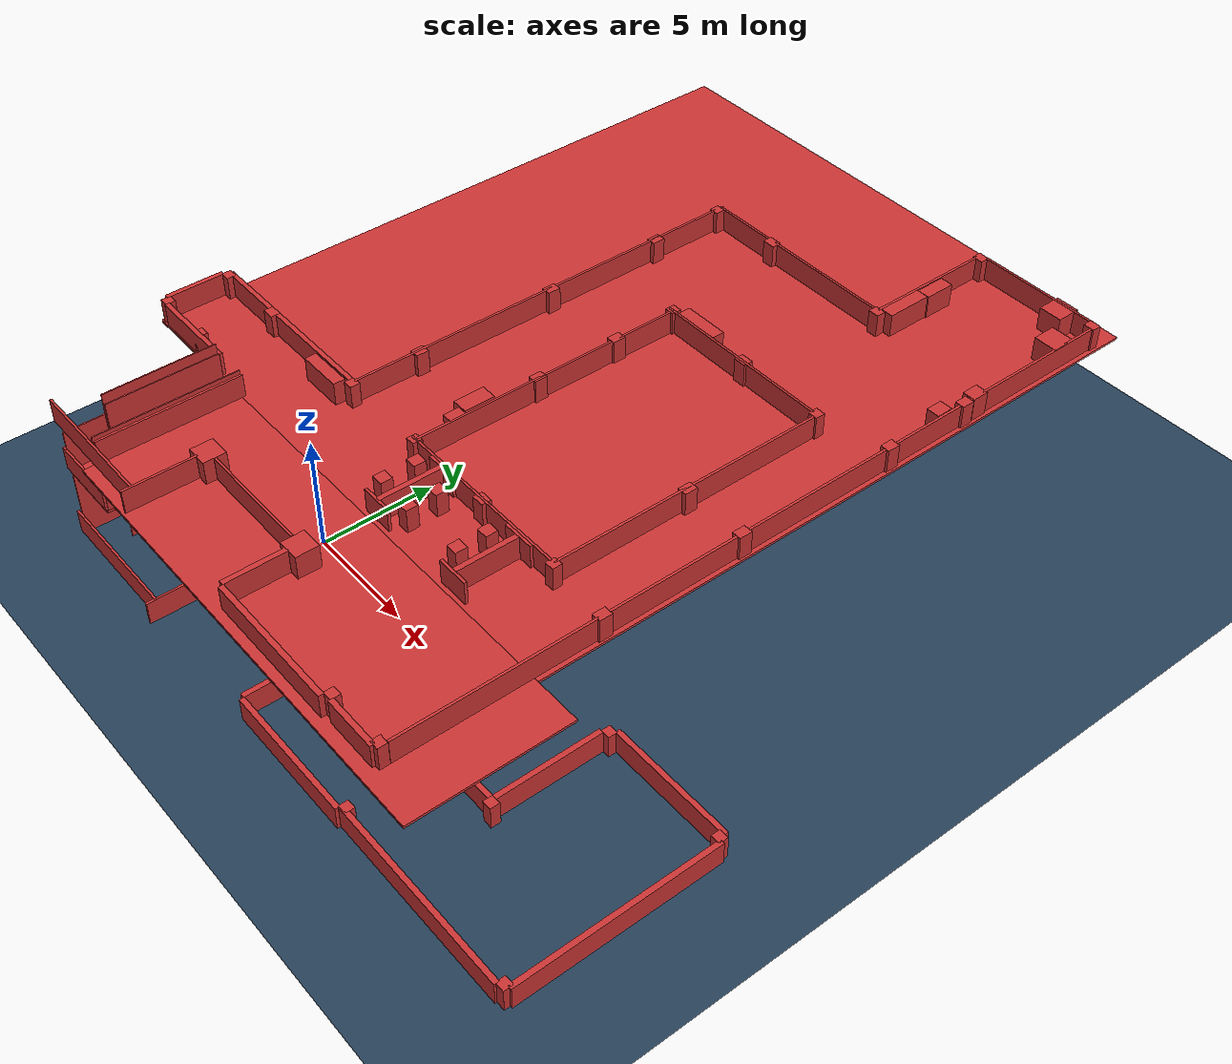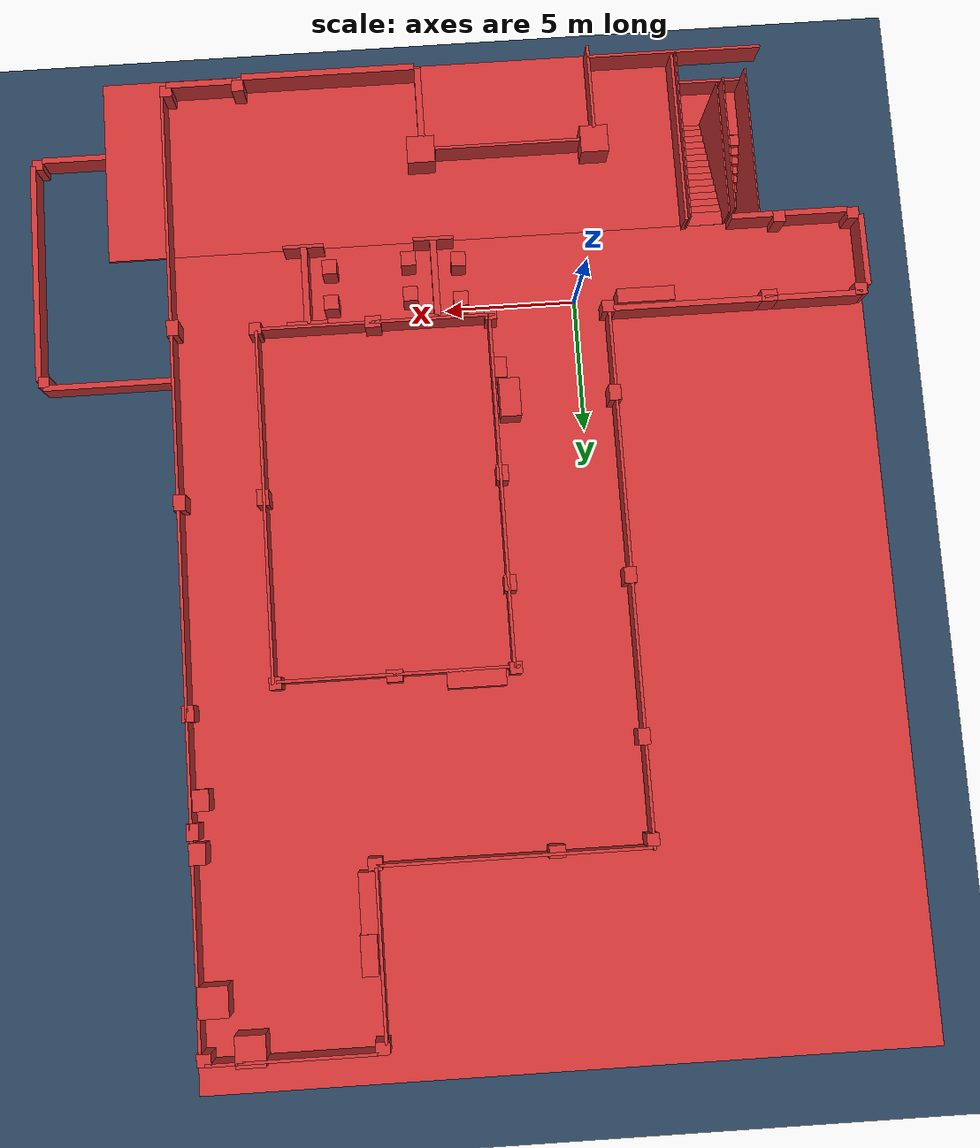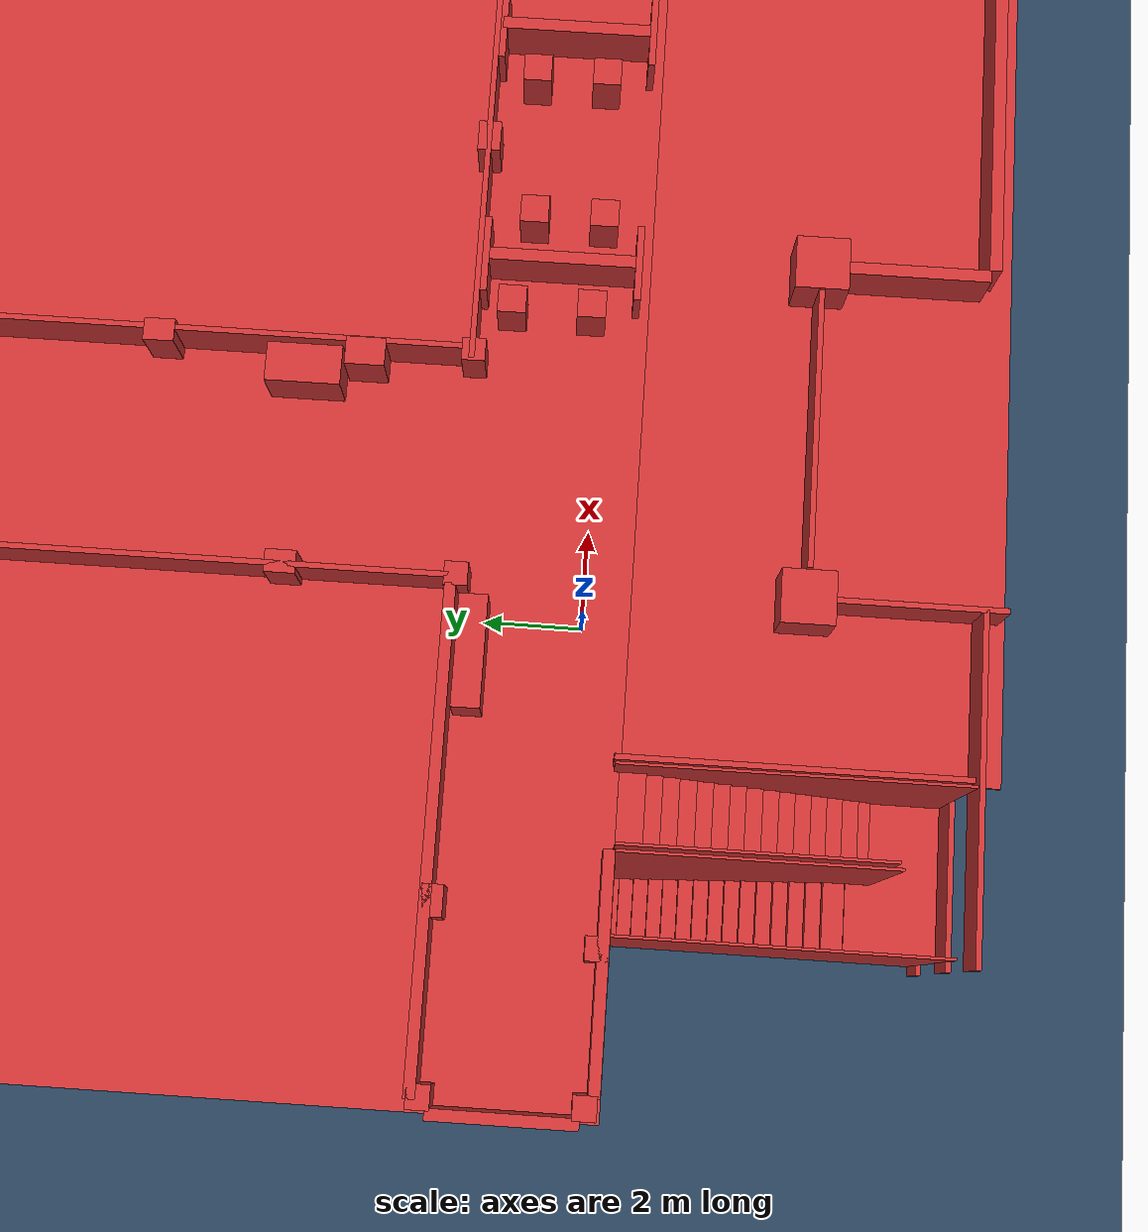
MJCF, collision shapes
<mujoco model="XXG scene">
  <include file="xxg.xml" />

  <statistic center="0 0 0.1" extent="0.8" />

  <visual>
    <headlight diffuse="0.6 0.6 0.6" ambient="0.3 0.3 0.3" specular="0 0 0" />
    <rgba haze="0.15 0.25 0.35 1" />
    <global azimuth="-130" elevation="-20" />
    <map znear="0.01" zfar="100"/>
  </visual>

  <asset>
    <texture type="skybox" builtin="gradient" rgb1="0.3 0.5 0.7" rgb2="0 0 0" width="512" height="3072" />
    <texture type="2d" name="groundplane" builtin="checker" mark="edge" rgb1="0.2 0.3 0.4" rgb2="0.1 0.2 0.3" markrgb="0.8 0.8 0.8" width="300" height="300" />
    <material name="groundplane" texture="groundplane" texuniform="true" texrepeat="5 5" reflectance="0.2" />
  <hfield name="perlin_hfield" size="1.0 0.75 0.2 0.2" file="../height_field.png" /><hfield name="image_hfield" size="1.0 1.0 0.02 0.1" file="../unitree_hfield.png" /></asset>

  <worldbody>
    <light pos="0 0 1.5" dir="0 0 -1" directional="true" />
    <geom name="floor" pos="0 0.0 0.001" size="0 0 0.05" type="plane" material="groundplane" />
<geom name="phs_Cube" type="box" size="0.475 0.475 0.5" pos="-0.4 -3.8 0.5" quat="1.0 0.0 0.0 0.0" rgba="0.8 0.2 0.2 1" solref="0.02 1" solimp="0.9 0.95 0.001"/>
<geom name="phs_Cube2" type="box" size="0.475 0.475 0.5" pos="5.6 -3.8 0.5" quat="1.0 0.0 0.0 0.0" rgba="0.8 0.2 0.2 1" solref="0.02 1" solimp="0.9 0.95 0.001"/>
<geom name="phs_Cube3" type="box" size="2.5 0.05 0.5" pos="2.6 -3.8 0.5" quat="1.0 0.0 0.0 0.0" rgba="0.8 0.2 0.2 1" solref="0.02 1" solimp="0.9 0.95 0.001"/>
<geom name="phs_Cube4" type="box" size="0.05 1.5 0.5" pos="-0.43 -5.7 0.5" quat="1.0 0.0 0.0 0.0" rgba="0.8 0.2 0.2 1" solref="0.02 1" solimp="0.9 0.95 0.001"/>
<geom name="phs_Cube5" type="box" size="0.05 3.0 0.5" pos="-3.43 -6.8 0.5" quat="0.707107 0.0 0.0 0.707107" rgba="0.8 0.2 0.2 1" solref="0.02 1" solimp="0.9 0.95 0.001"/>
<geom name="phs_Cube6" type="box" size="0.025 3.0 2.5" pos="-6.22 -3.74 2.5" quat="1.0 0.0 0.0 -0.0" rgba="0.8 0.2 0.2 1" solref="0.02 1" solimp="0.9 0.95 0.001"/>
<geom name="phs_Cube7" type="box" size="0.18 0.18 0.5" pos="-6.5 -0.57 0.5" quat="1.0 0.0 0.0 0.0" rgba="0.8 0.2 0.2 1" solref="0.02 1" solimp="0.9 0.95 0.001"/>
<geom name="phs_Cube8" type="box" size="0.2 0.2 0.5" pos="-8.98 -0.39 0.5" quat="1.0 0.0 0.0 0.0" rgba="0.8 0.2 0.2 1" solref="0.02 1" solimp="0.9 0.95 0.001"/>
<geom name="phs_Cube9" type="box" size="1.05 0.05 0.5" pos="-7.7 -0.57 0.5" quat="1.0 0.0 0.0 0.0" rgba="0.8 0.2 0.2 1" solref="0.02 1" solimp="0.9 0.95 0.001"/>
<geom name="phs_Cube10" type="box" size="2.5 0.05 0.5" pos="-9.2 2.29 0.5" quat="0.707107 0.0 0.0 -0.707107" rgba="0.8 0.2 0.2 1" solref="0.02 1" solimp="0.9 0.95 0.001"/>
<geom name="phs_Cube11" type="box" size="0.2 0.2 0.5" pos="-9.07 4.98 0.5" quat="1.0 0.0 0.0 0.0" rgba="0.8 0.2 0.2 1" solref="0.02 1" solimp="0.9 0.95 0.001"/>
<geom name="phs_Cube12" type="box" size="0.27 0.2 0.5" pos="-6.89 5.18 0.5" quat="1.0 0.0 0.0 0.0" rgba="0.8 0.2 0.2 1" solref="0.02 1" solimp="0.9 0.95 0.001"/>
<geom name="phs_Cube13" type="box" size="1.75 0.11 0.5" pos="-7.35 5.3 0.5" quat="1.0 0.0 0.0 0.0" rgba="0.8 0.2 0.2 1" solref="0.02 1" solimp="0.9 0.95 0.001"/>
<geom name="phs_Cube14" type="box" size="1.75 0.11 0.5" pos="-2.45 5.3 0.5" quat="1.0 0.0 0.0 0.0" rgba="0.8 0.2 0.2 1" solref="0.02 1" solimp="0.9 0.95 0.001"/>
<geom name="phs_Cube15" type="box" size="0.27 0.2 0.5" pos="-2.9 5.18 0.5" quat="1.0 0.0 0.0 0.0" rgba="0.8 0.2 0.2 1" solref="0.02 1" solimp="0.9 0.95 0.001"/>
<geom name="phs_Cube16" type="box" size="0.2 0.2 0.5" pos="-0.51 4.98 0.5" quat="1.0 0.0 0.0 0.0" rgba="0.8 0.2 0.2 1" solref="0.02 1" solimp="0.9 0.95 0.001"/>
<geom name="phs_Cube17" type="box" size="1.25 0.11 0.5" pos="-0.3 3.65 0.5" quat="0.707107 0.0 0.0 -0.707107" rgba="0.8 0.2 0.2 1" solref="0.02 1" solimp="0.9 0.95 0.001"/>
<geom name="phs_Cube18" type="box" size="0.205 0.2 0.5" pos="-0.29 2.18 0.5" quat="1.0 0.0 0.0 0.0" rgba="0.8 0.2 0.2 1" solref="0.02 1" solimp="0.9 0.95 0.001"/>
<geom name="phs_Cube19" type="box" size="4.75 0.11 0.5" pos="4.66 2.29 0.5" quat="1.0 0.0 0.0 0.0" rgba="0.8 0.2 0.2 1" solref="0.02 1" solimp="0.9 0.95 0.001"/>
<geom name="phs_Cube20" type="box" size="0.27 0.2 0.5" pos="4.6 2.29 0.5" quat="1.0 0.0 0.0 0.0" rgba="0.8 0.2 0.2 1" solref="0.02 1" solimp="0.9 0.95 0.001"/>
<geom name="phs_Cube21" type="box" size="0.75 0.11 0.5" pos="-4.9 5.3 0.5" quat="1.0 0.0 0.0 0.0" rgba="0.8 0.2 0.2 1" solref="0.02 1" solimp="0.9 0.95 0.001"/>
<geom name="phs_Cube22" type="box" size="2.5 0.11 0.5" pos="9.69 -0.16 0.5" quat="0.707107 0.0 0.0 -0.707107" rgba="0.8 0.2 0.2 1" solref="0.02 1" solimp="0.9 0.95 0.001"/>
<geom name="phs_Cube23" type="box" size="0.205 0.2 0.5" pos="9.61 2.08 0.5" quat="1.0 0.0 0.0 0.0" rgba="0.8 0.2 0.2 1" solref="0.02 1" solimp="0.9 0.95 0.001"/>
<geom name="phs_Cube24" type="box" size="0.205 0.2 0.5" pos="9.71 -2.81 0.5" quat="1.0 0.0 0.0 0.0" rgba="0.8 0.2 0.2 1" solref="0.02 1" solimp="0.9 0.95 0.001"/>
<geom name="phs_Cube25" type="box" size="0.27 0.2 0.5" pos="12.39 -2.81 0.5" quat="1.0 0.0 0.0 0.0" rgba="0.8 0.2 0.2 1" solref="0.02 1" solimp="0.9 0.95 0.001"/>
<geom name="phs_Cube26" type="box" size="0.205 0.2 0.5" pos="14.6 -2.81 0.5" quat="1.0 0.0 0.0 0.0" rgba="0.8 0.2 0.2 1" solref="0.02 1" solimp="0.9 0.95 0.001"/>
<geom name="phs_Cube27" type="box" size="0.205 0.2 0.5" pos="14.7 2.06 0.5" quat="1.0 0.0 0.0 0.0" rgba="0.8 0.2 0.2 1" solref="0.02 1" solimp="0.9 0.95 0.001"/>
<geom name="phs_Cube28" type="box" size="0.205 0.2 0.5" pos="20.3 2.06 0.5" quat="1.0 0.0 0.0 0.0" rgba="0.8 0.2 0.2 1" solref="0.02 1" solimp="0.9 0.95 0.001"/>
<geom name="phs_Cube29" type="box" size="0.205 0.2 0.5" pos="20.3 -6.53 0.5" quat="1.0 0.0 0.0 0.0" rgba="0.8 0.2 0.2 1" solref="0.02 1" solimp="0.9 0.95 0.001"/>
<geom name="phs_Cube30" type="box" size="0.205 0.2 0.5" pos="11.8 -6.58 0.5" quat="1.0 0.0 0.0 0.0" rgba="0.8 0.2 0.2 1" solref="0.02 1" solimp="0.9 0.95 0.001"/>
<geom name="phs_Cube31" type="box" size="2.25 0.11 0.5" pos="12.15 -2.71 0.5" quat="1.0 0.0 0.0 0.0" rgba="0.8 0.2 0.2 1" solref="0.02 1" solimp="0.9 0.95 0.001"/>
<geom name="phs_Cube32" type="box" size="2.25 0.11 0.5" pos="14.5 -0.37 0.5" quat="0.707107 0.0 0.0 0.707107" rgba="0.8 0.2 0.2 1" solref="0.02 1" solimp="0.9 0.95 0.001"/>
<geom name="phs_Cube33" type="box" size="2.75 0.11 0.5" pos="17.6 2.3 0.5" quat="1.0 0.0 0.0 -0.0" rgba="0.8 0.2 0.2 1" solref="0.02 1" solimp="0.9 0.95 0.001"/>
<geom name="phs_Cube34" type="box" size="4.25 0.11 0.5" pos="20.49 -2.25 0.5" quat="0.707107 0.0 0.0 -0.707107" rgba="0.8 0.2 0.2 1" solref="0.02 1" solimp="0.9 0.95 0.001"/>
<geom name="phs_Cube35" type="box" size="4.25 0.11 0.5" pos="15.89 -6.7 0.5" quat="0.0 0.0 0.0 -1.0" rgba="0.8 0.2 0.2 1" solref="0.02 1" solimp="0.9 0.95 0.001"/>
<geom name="phs_Cube36" type="box" size="3.0 0.11 0.5" pos="8.65 -6.83 0.5" quat="0.0 0.0 0.0 -1.0" rgba="0.8 0.2 0.2 1" solref="0.02 1" solimp="0.9 0.95 0.001"/>
<geom name="phs_Cube37" type="box" size="1.25 0.11 0.5" pos="5.54 -5.51 0.5" quat="0.707107 0.0 0.0 0.707107" rgba="0.8 0.2 0.2 1" solref="0.02 1" solimp="0.9 0.95 0.001"/>
<geom name="phs_Cube38" type="box" size="0.025 2.35 3.5" pos="-4.92 -3.13 3.5" quat="1.0 0.0 0.0 0.0" rgba="0.8 0.2 0.2 1" solref="0.02 1" solimp="0.9 0.95 0.001"/>
<geom name="phs_Cube39" type="box" size="0.025 2.35 1.75" pos="-4.78 -3.13 4.89" quat="1.0 0.0 0.0 0.0" rgba="0.8 0.2 0.2 1" solref="0.02 1" solimp="0.9 0.95 0.001"/>
<geom name="phs_Cube40" type="box" size="0.025 3.0 1.75" pos="-3.45 -3.7 4.89" quat="1.0 0.0 0.0 0.0" rgba="0.8 0.2 0.2 1" solref="0.02 1" solimp="0.9 0.95 0.001"/>
<geom name="phs_Cube41" type="box" size="0.05 1.5 0.5" pos="-4.93 -6.75 3.68" quat="0.707107 0.0 0.0 0.707107" rgba="0.8 0.2 0.2 1" solref="0.02 1" solimp="0.9 0.95 0.001"/>
<geom name="phs_Cube42" type="box" size="0.475 0.475 0.5" pos="-0.4 -3.8 6.0" quat="1.0 0.0 0.0 0.0" rgba="0.8 0.2 0.2 1" solref="0.02 1" solimp="0.9 0.95 0.001"/>
<geom name="phs_Cube43" type="box" size="0.475 0.475 0.5" pos="5.6 -3.8 6.0" quat="1.0 0.0 0.0 0.0" rgba="0.8 0.2 0.2 1" solref="0.02 1" solimp="0.9 0.95 0.001"/>
<geom name="phs_Cube44" type="box" size="2.5 0.05 0.5" pos="2.6 -3.8 6.0" quat="1.0 0.0 0.0 0.0" rgba="0.8 0.2 0.2 1" solref="0.02 1" solimp="0.9 0.95 0.001"/>
<geom name="phs_Cube45" type="box" size="0.05 1.5 0.5" pos="-0.43 -5.7 6.0" quat="1.0 0.0 0.0 0.0" rgba="0.8 0.2 0.2 1" solref="0.02 1" solimp="0.9 0.95 0.001"/>
<geom name="phs_Cube46" type="box" size="0.05 3.0 0.5" pos="-3.43 -6.8 6.0" quat="0.707107 0.0 0.0 0.707107" rgba="0.8 0.2 0.2 1" solref="0.02 1" solimp="0.9 0.95 0.001"/>
<geom name="phs_Cube47" type="box" size="0.205 0.2 0.5" pos="11.8 -6.53 6.0" quat="1.0 0.0 0.0 0.0" rgba="0.8 0.2 0.2 1" solref="0.02 1" solimp="0.9 0.95 0.001"/>
<geom name="phs_Cube48" type="box" size="1.15 0.11 0.5" pos="13.13 -6.7 6.0" quat="0.0 0.0 0.0 -1.0" rgba="0.8 0.2 0.2 1" solref="0.02 1" solimp="0.9 0.95 0.001"/>
<geom name="phs_Cube49" type="box" size="3.0 0.11 0.5" pos="8.65 -6.83 6.0" quat="0.0 0.0 0.0 -1.0" rgba="0.8 0.2 0.2 1" solref="0.02 1" solimp="0.9 0.95 0.001"/>
<geom name="phs_Cube50" type="box" size="1.25 0.11 0.5" pos="5.54 -5.51 6.0" quat="0.707107 0.0 0.0 0.707107" rgba="0.8 0.2 0.2 1" solref="0.02 1" solimp="0.9 0.95 0.001"/>
<geom name="phs_Cube51" type="box" size="0.205 0.2 0.5" pos="14.29 -6.49 6.0" quat="1.0 0.0 0.0 0.0" rgba="0.8 0.2 0.2 1" solref="0.02 1" solimp="0.9 0.95 0.001"/>
<geom name="phs_Cube52" type="box" size="0.205 0.2 0.5" pos="-6.5 -0.59 6.0" quat="1.0 0.0 0.0 0.0" rgba="0.8 0.2 0.2 1" solref="0.02 1" solimp="0.9 0.95 0.001"/>
<geom name="phs_Cube53" type="box" size="0.205 0.2 0.5" pos="-9.03 -0.55 6.0" quat="1.0 0.0 0.0 0.0" rgba="0.8 0.2 0.2 1" solref="0.02 1" solimp="0.9 0.95 0.001"/>
<geom name="phs_Cube54" type="box" size="0.205 0.2 0.5" pos="-9.03 2.14 6.0" quat="1.0 0.0 0.0 0.0" rgba="0.8 0.2 0.2 1" solref="0.02 1" solimp="0.9 0.95 0.001"/>
<geom name="phs_Cube55" type="box" size="0.1 1.25 0.5" pos="-9.29 0.77 6.0" quat="1.0 0.0 0.0 0.0" rgba="0.8 0.2 0.2 1" solref="0.02 1" solimp="0.9 0.95 0.001"/>
<geom name="phs_Cube56" type="box" size="0.1 4.25 0.5" pos="-4.82 2.28 6.0" quat="0.707107 0.0 0.0 -0.707107" rgba="0.8 0.2 0.2 1" solref="0.02 1" solimp="0.9 0.95 0.001"/>
<geom name="phs_Cube57" type="box" size="0.27 0.2 0.5" pos="-5.9 2.18 6.0" quat="1.0 0.0 0.0 0.0" rgba="0.8 0.2 0.2 1" solref="0.02 1" solimp="0.9 0.95 0.001"/>
<geom name="phs_Cube58" type="box" size="0.205 0.205 0.5" pos="-0.4 2.2 6.0" quat="1.0 0.0 0.0 0.0" rgba="0.8 0.2 0.2 1" solref="0.02 1" solimp="0.9 0.95 0.001"/>
<geom name="phs_Cube59" type="box" size="0.05 3.0 0.5" pos="-3.33 -3.68 6.0" quat="1.0 0.0 0.0 0.0" rgba="0.8 0.2 0.2 1" solref="0.02 1" solimp="0.9 0.95 0.001"/>
<geom name="phs_Cube60" type="box" size="0.1 2.0 0.5" pos="-6.87 -0.69 6.0" quat="0.707107 0.0 0.0 0.707107" rgba="0.8 0.2 0.2 1" solref="0.02 1" solimp="0.9 0.95 0.001"/>
<geom name="phs_Cube61" type="box" size="0.27 0.2 0.5" pos="-0.39 5.2 6.0" quat="0.707107 0.0 0.0 0.707107" rgba="0.8 0.2 0.2 1" solref="0.02 1" solimp="0.9 0.95 0.001"/>
<geom name="phs_Cube62" type="box" size="0.27 0.2 0.5" pos="-0.39 11.4 6.0" quat="0.707107 0.0 0.0 0.707107" rgba="0.8 0.2 0.2 1" solref="0.02 1" solimp="0.9 0.95 0.001"/>
<geom name="phs_Cube63" type="box" size="0.27 0.2 0.5" pos="-0.39 16.7 6.0" quat="0.707107 0.0 0.0 0.707107" rgba="0.8 0.2 0.2 1" solref="0.02 1" solimp="0.9 0.95 0.001"/>
<geom name="phs_Cube64" type="box" size="0.205 0.205 0.5" pos="3.6 2.2 6.0" quat="1.0 0.0 0.0 0.0" rgba="0.8 0.2 0.2 1" solref="0.02 1" solimp="0.9 0.95 0.001"/>
<geom name="phs_Cube65" type="box" size="0.27 0.2 0.5" pos="3.59 7.7 6.0" quat="0.707107 0.0 0.0 0.707107" rgba="0.8 0.2 0.2 1" solref="0.02 1" solimp="0.9 0.95 0.001"/>
<geom name="phs_Cube66" type="box" size="0.27 0.2 0.5" pos="3.59 11.4 6.0" quat="0.707107 0.0 0.0 0.707107" rgba="0.8 0.2 0.2 1" solref="0.02 1" solimp="0.9 0.95 0.001"/>
<geom name="phs_Cube67" type="box" size="0.27 0.2 0.5" pos="2.7 20.18 6.0" quat="0.0 0.0 0.0 1.0" rgba="0.8 0.2 0.2 1" solref="0.02 1" solimp="0.9 0.95 0.001"/>
<geom name="phs_Cube68" type="box" size="0.205 0.205 0.5" pos="3.6 14.2 6.0" quat="1.0 0.0 0.0 0.0" rgba="0.8 0.2 0.2 1" solref="0.02 1" solimp="0.9 0.95 0.001"/>
<geom name="phs_Cube69" type="box" size="0.205 0.205 0.5" pos="-0.4 20.0 6.0" quat="1.0 0.0 0.0 0.0" rgba="0.8 0.2 0.2 1" solref="0.02 1" solimp="0.9 0.95 0.001"/>
<geom name="phs_Cube70" type="box" size="0.235 0.2 0.5" pos="8.58 20.19 6.0" quat="1.0 0.0 0.0 0.0" rgba="0.8 0.2 0.2 1" solref="0.02 1" solimp="0.9 0.95 0.001"/>
<geom name="phs_Cube71" type="box" size="0.27 0.2 0.5" pos="7.59 14.21 6.0" quat="0.0 0.0 0.0 1.0" rgba="0.8 0.2 0.2 1" solref="0.02 1" solimp="0.9 0.95 0.001"/>
<geom name="phs_Cube72" type="box" size="0.205 0.205 0.5" pos="11.5 14.2 6.0" quat="1.0 0.0 0.0 0.0" rgba="0.8 0.2 0.2 1" solref="0.02 1" solimp="0.9 0.95 0.001"/>
<geom name="phs_Cube73" type="box" size="0.235 0.2 0.5" pos="8.67 25.89 6.0" quat="1.0 0.0 0.0 0.0" rgba="0.8 0.2 0.2 1" solref="0.02 1" solimp="0.9 0.95 0.001"/>
<geom name="phs_Cube74" type="box" size="0.27 0.2 0.5" pos="11.61 8.01 6.0" quat="0.707107 0.0 0.0 0.707107" rgba="0.8 0.2 0.2 1" solref="0.02 1" solimp="0.9 0.95 0.001"/>
<geom name="phs_Cube75" type="box" size="0.27 0.2 0.5" pos="14.39 2.0 6.0" quat="0.707107 0.0 0.0 0.707107" rgba="0.8 0.2 0.2 1" solref="0.02 1" solimp="0.9 0.95 0.001"/>
<geom name="phs_Cube76" type="box" size="0.27 0.2 0.5" pos="14.39 8.01 6.0" quat="0.707107 0.0 0.0 0.707107" rgba="0.8 0.2 0.2 1" solref="0.02 1" solimp="0.9 0.95 0.001"/>
<geom name="phs_Cube77" type="box" size="0.27 0.2 0.5" pos="7.6 2.22 6.0" quat="1.0 0.0 0.0 0.0" rgba="0.8 0.2 0.2 1" solref="0.02 1" solimp="0.9 0.95 0.001"/>
<geom name="phs_Cube78" type="box" size="0.205 0.205 0.5" pos="11.6 2.2 6.0" quat="1.0 0.0 0.0 0.0" rgba="0.8 0.2 0.2 1" solref="0.02 1" solimp="0.9 0.95 0.001"/>
<geom name="phs_Cube79" type="box" size="0.27 0.2 0.5" pos="14.39 15.0 6.0" quat="0.707107 0.0 0.0 0.707107" rgba="0.8 0.2 0.2 1" solref="0.02 1" solimp="0.9 0.95 0.001"/>
<geom name="phs_Cube80" type="box" size="0.27 0.2 0.5" pos="14.39 18.8 6.0" quat="0.707107 0.0 0.0 0.707107" rgba="0.8 0.2 0.2 1" solref="0.02 1" solimp="0.9 0.95 0.001"/>
<geom name="phs_Cube81" type="box" size="6.0 0.05 0.5" pos="3.65 8.19 6.0" quat="0.707107 0.0 0.0 -0.707107" rgba="0.8 0.2 0.2 1" solref="0.02 1" solimp="0.9 0.95 0.001"/>
<geom name="phs_Cube82" type="box" size="9.0 0.05 0.5" pos="-0.43 11.33 6.0" quat="0.707107 0.0 0.0 -0.707107" rgba="0.8 0.2 0.2 1" solref="0.02 1" solimp="0.9 0.95 0.001"/>
<geom name="phs_Cube83" type="box" size="4.0 0.05 0.5" pos="7.45 14.16 6.0" quat="0.0 0.0 0.0 -1.0" rgba="0.8 0.2 0.2 1" solref="0.02 1" solimp="0.9 0.95 0.001"/>
<geom name="phs_Cube84" type="box" size="4.5 0.05 0.5" pos="4.14 20.25 6.0" quat="0.0 0.0 0.0 -1.0" rgba="0.8 0.2 0.2 1" solref="0.02 1" solimp="0.9 0.95 0.001"/>
<geom name="phs_Cube85" type="box" size="2.75 0.05 0.5" pos="8.55 23.05 6.0" quat="0.707107 0.0 0.0 -0.707107" rgba="0.8 0.2 0.2 1" solref="0.02 1" solimp="0.9 0.95 0.001"/>
<geom name="phs_Cube86" type="box" size="0.235 0.2 0.5" pos="14.32 25.89 6.0" quat="1.0 0.0 0.0 0.0" rgba="0.8 0.2 0.2 1" solref="0.02 1" solimp="0.9 0.95 0.001"/>
<geom name="phs_Cube87" type="box" size="2.75 0.05 0.5" pos="11.55 26.05 6.0" quat="0.0 0.0 0.0 -1.0" rgba="0.8 0.2 0.2 1" solref="0.02 1" solimp="0.9 0.95 0.001"/>
<geom name="phs_Cube88" type="box" size="16.0 0.05 0.5" pos="14.44 9.72 6.0" quat="0.707107 0.0 0.0 -0.707107" rgba="0.8 0.2 0.2 1" solref="0.02 1" solimp="0.9 0.95 0.001"/>
<geom name="phs_Cube89" type="box" size="6.0 0.05 0.5" pos="11.57 8.23 6.0" quat="0.707107 0.0 0.0 -0.707107" rgba="0.8 0.2 0.2 1" solref="0.02 1" solimp="0.9 0.95 0.001"/>
<geom name="phs_Cube90" type="box" size="4.0 0.05 0.5" pos="7.45 2.23 6.0" quat="0.0 0.0 0.0 -1.0" rgba="0.8 0.2 0.2 1" solref="0.02 1" solimp="0.9 0.95 0.001"/>
<geom name="phs_Cube91" type="box" size="10.0 0.05 3.25" pos="6.67 -4.07 5.46" quat="0.707107 -0.707107 0.0 0.0" rgba="0.8 0.2 0.2 1" solref="0.02 1" solimp="0.9 0.95 0.001"/>
<geom name="phs_Cube92" type="box" size="12.0 0.05 14.0" pos="2.67 13.18 5.46" quat="0.707107 -0.707107 0.0 0.0" rgba="0.8 0.2 0.2 1" solref="0.02 1" solimp="0.9 0.95 0.001"/>
<geom name="phs_Cube93" type="box" size="0.975 0.25 0.5" pos="-1.71 1.87 6.0" quat="1.0 0.0 0.0 0.0" rgba="0.8 0.2 0.2 1" solref="0.02 1" solimp="0.9 0.95 0.001"/>
<geom name="phs_Cube94" type="box" size="0.66 0.35 0.5" pos="3.15 5.13 6.0" quat="0.707107 0.0 0.0 -0.707107" rgba="0.8 0.2 0.2 1" solref="0.02 1" solimp="0.9 0.95 0.001"/>
<geom name="phs_Cube95" type="box" size="0.35 0.25 0.5" pos="3.44 4.08 6.0" quat="0.707107 0.0 0.0 -0.707107" rgba="0.8 0.2 0.2 1" solref="0.02 1" solimp="0.9 0.95 0.001"/>
<geom name="phs_Cube96" type="box" size="0.975 0.275 0.5" pos="4.91 14.47 6.0" quat="0.0 0.0 0.0 -1.0" rgba="0.8 0.2 0.2 1" solref="0.02 1" solimp="0.9 0.95 0.001"/>
<geom name="phs_Cube97" type="box" size="0.975 0.275 0.5" pos="8.87 21.39 6.0" quat="0.707107 0.0 0.0 -0.707107" rgba="0.8 0.2 0.2 1" solref="0.02 1" solimp="0.9 0.95 0.001"/>
<geom name="phs_Cube98" type="box" size="0.65 0.275 0.5" pos="8.92 23.02 6.0" quat="0.707107 0.0 0.0 -0.707107" rgba="0.8 0.2 0.2 1" solref="0.02 1" solimp="0.9 0.95 0.001"/>
<geom name="phs_Cube99" type="box" size="0.35 0.275 0.5" pos="14.27 19.5 6.0" quat="0.707107 0.0 0.0 -0.707107" rgba="0.8 0.2 0.2 1" solref="0.02 1" solimp="0.9 0.95 0.001"/>
<geom name="phs_Cube100" type="box" size="0.35 0.275 0.5" pos="14.09 17.81 6.0" quat="0.707107 0.0 0.0 -0.707107" rgba="0.8 0.2 0.2 1" solref="0.02 1" solimp="0.9 0.95 0.001"/>
<geom name="phs_Cube101" type="box" size="0.5 0.5 0.5" pos="13.96 24.14 6.0" quat="0.707107 0.0 0.0 -0.707107" rgba="0.8 0.2 0.2 1" solref="0.02 1" solimp="0.9 0.95 0.001"/>
<geom name="phs_Cube102" type="box" size="0.5 0.5 0.5" pos="12.84 25.71 6.0" quat="0.707107 0.0 0.0 -0.707107" rgba="0.8 0.2 0.2 1" solref="0.02 1" solimp="0.9 0.95 0.001"/>
<geom name="phs_Cube103" type="box" size="1.35 0.11 0.5" pos="5.39 0.79 6.0" quat="0.707107 0.0 0.0 -0.707107" rgba="0.8 0.2 0.2 1" solref="0.02 1" solimp="0.9 0.95 0.001"/>
<geom name="phs_Cube104" type="box" size="0.685 0.06 0.5" pos="5.38 2.12 6.0" quat="1.0 0.0 0.0 0.0" rgba="0.8 0.2 0.2 1" solref="0.02 1" solimp="0.9 0.95 0.001"/>
<geom name="phs_Cube105" type="box" size="0.685 0.06 0.5" pos="9.83 -0.58 6.0" quat="1.0 0.0 0.0 0.0" rgba="0.8 0.2 0.2 1" solref="0.02 1" solimp="0.9 0.95 0.001"/>
<geom name="phs_Cube106" type="box" size="0.685 0.06 0.5" pos="9.82 2.12 6.0" quat="1.0 0.0 0.0 0.0" rgba="0.8 0.2 0.2 1" solref="0.02 1" solimp="0.9 0.95 0.001"/>
<geom name="phs_Cube107" type="box" size="1.35 0.11 0.5" pos="9.81 0.79 6.0" quat="0.707107 0.0 0.0 -0.707107" rgba="0.8 0.2 0.2 1" solref="0.02 1" solimp="0.9 0.95 0.001"/>
<geom name="phs_Cube108" type="box" size="0.25 0.25 0.5" pos="4.57 1.6 6.0" quat="1.0 0.0 0.0 0.0" rgba="0.8 0.2 0.2 1" solref="0.02 1" solimp="0.9 0.95 0.001"/>
<geom name="phs_Cube109" type="box" size="0.25 0.25 0.5" pos="4.57 0.2 6.0" quat="1.0 0.0 0.0 0.0" rgba="0.8 0.2 0.2 1" solref="0.02 1" solimp="0.9 0.95 0.001"/>
<geom name="phs_Cube110" type="box" size="0.25 0.25 0.5" pos="8.97 0.2 6.0" quat="1.0 0.0 0.0 0.0" rgba="0.8 0.2 0.2 1" solref="0.02 1" solimp="0.9 0.95 0.001"/>
<geom name="phs_Cube111" type="box" size="0.25 0.25 0.5" pos="8.97 1.45 6.0" quat="1.0 0.0 0.0 0.0" rgba="0.8 0.2 0.2 1" solref="0.02 1" solimp="0.9 0.95 0.001"/>
<geom name="phs_Cube112" type="box" size="0.25 0.25 0.5" pos="6.27 0.08 6.0" quat="1.0 0.0 0.0 0.0" rgba="0.8 0.2 0.2 1" solref="0.02 1" solimp="0.9 0.95 0.001"/>
<geom name="phs_Cube113" type="box" size="0.25 0.25 0.5" pos="6.27 1.32 6.0" quat="1.0 0.0 0.0 0.0" rgba="0.8 0.2 0.2 1" solref="0.02 1" solimp="0.9 0.95 0.001"/>
<geom name="phs_Cube114" type="box" size="0.65 0.2 0.105" pos="-5.57 -0.96 0.1" quat="1.0 0.0 0.0 0.0" rgba="0.8 0.2 0.2 1" solref="0.02 1" solimp="0.9 0.95 0.001"/>
<geom name="phs_Cube115" type="box" size="0.65 0.2 0.105" pos="-5.57 -1.25 0.32" quat="1.0 0.0 0.0 0.0" rgba="0.8 0.2 0.2 1" solref="0.02 1" solimp="0.9 0.95 0.001"/>
<geom name="phs_Cube116" type="box" size="0.65 0.2 0.105" pos="-5.57 -1.52 0.53" quat="1.0 0.0 0.0 0.0" rgba="0.8 0.2 0.2 1" solref="0.02 1" solimp="0.9 0.95 0.001"/>
<geom name="phs_Cube117" type="box" size="0.65 0.2 0.105" pos="-5.57 -1.8 0.74" quat="1.0 0.0 0.0 0.0" rgba="0.8 0.2 0.2 1" solref="0.02 1" solimp="0.9 0.95 0.001"/>
<geom name="phs_Cube118" type="box" size="0.65 0.2 0.105" pos="-5.57 -2.07 0.95" quat="1.0 0.0 0.0 0.0" rgba="0.8 0.2 0.2 1" solref="0.02 1" solimp="0.9 0.95 0.001"/>
<geom name="phs_Cube119" type="box" size="0.65 0.2 0.105" pos="-5.57 -2.35 1.17" quat="1.0 0.0 0.0 0.0" rgba="0.8 0.2 0.2 1" solref="0.02 1" solimp="0.9 0.95 0.001"/>
<geom name="phs_Cube120" type="box" size="0.65 0.2 0.105" pos="-5.57 -2.63 1.38" quat="1.0 0.0 0.0 0.0" rgba="0.8 0.2 0.2 1" solref="0.02 1" solimp="0.9 0.95 0.001"/>
<geom name="phs_Cube121" type="box" size="0.65 0.2 0.105" pos="-5.57 -2.91 1.59" quat="1.0 0.0 0.0 0.0" rgba="0.8 0.2 0.2 1" solref="0.02 1" solimp="0.9 0.95 0.001"/>
<geom name="phs_Cube122" type="box" size="0.65 0.2 0.105" pos="-5.57 -3.18 1.8" quat="1.0 0.0 0.0 0.0" rgba="0.8 0.2 0.2 1" solref="0.02 1" solimp="0.9 0.95 0.001"/>
<geom name="phs_Cube123" type="box" size="0.65 0.2 0.105" pos="-5.57 -3.46 2.02" quat="1.0 0.0 0.0 0.0" rgba="0.8 0.2 0.2 1" solref="0.02 1" solimp="0.9 0.95 0.001"/>
<geom name="phs_Cube124" type="box" size="0.65 0.2 0.105" pos="-5.57 -3.74 2.23" quat="1.0 0.0 0.0 0.0" rgba="0.8 0.2 0.2 1" solref="0.02 1" solimp="0.9 0.95 0.001"/>
<geom name="phs_Cube125" type="box" size="0.65 0.2 0.105" pos="-5.57 -4.02 2.44" quat="1.0 0.0 0.0 0.0" rgba="0.8 0.2 0.2 1" solref="0.02 1" solimp="0.9 0.95 0.001"/>
<geom name="phs_Cube126" type="box" size="0.65 0.2 0.105" pos="-5.57 -4.29 2.65" quat="1.0 0.0 0.0 0.0" rgba="0.8 0.2 0.2 1" solref="0.02 1" solimp="0.9 0.95 0.001"/>
<geom name="phs_Cube127" type="box" size="0.65 0.2 0.105" pos="-5.57 -4.57 2.86" quat="1.0 0.0 0.0 0.0" rgba="0.8 0.2 0.2 1" solref="0.02 1" solimp="0.9 0.95 0.001"/>
<geom name="phs_Cube128" type="box" size="0.65 0.2 0.105" pos="-5.57 -4.85 3.075" quat="1.0 0.0 0.0 0.0" rgba="0.8 0.2 0.2 1" solref="0.02 1" solimp="0.9 0.95 0.001"/>
<geom name="phs_Cube129" type="box" size="1.4 0.85 0.105" pos="-4.84 -5.89 3.11" quat="1.0 0.0 0.0 0.0" rgba="0.8 0.2 0.2 1" solref="0.02 1" solimp="0.9 0.95 0.001"/>
<geom name="phs_Cube130" type="box" size="0.65 0.2 0.105" pos="-4.12 -5.22 3.27" quat="1.0 0.0 0.0 0.0" rgba="0.8 0.2 0.2 1" solref="0.02 1" solimp="0.9 0.95 0.001"/>
<geom name="phs_Cube131" type="box" size="0.65 0.2 0.105" pos="-4.12 -4.99 3.42" quat="1.0 0.0 0.0 0.0" rgba="0.8 0.2 0.2 1" solref="0.02 1" solimp="0.9 0.95 0.001"/>
<geom name="phs_Cube132" type="box" size="0.65 0.2 0.105" pos="-4.12 -4.68 3.58" quat="1.0 0.0 0.0 0.0" rgba="0.8 0.2 0.2 1" solref="0.02 1" solimp="0.9 0.95 0.001"/>
<geom name="phs_Cube133" type="box" size="0.65 0.2 0.105" pos="-4.12 -4.38 3.73" quat="1.0 0.0 0.0 0.0" rgba="0.8 0.2 0.2 1" solref="0.02 1" solimp="0.9 0.95 0.001"/>
<geom name="phs_Cube134" type="box" size="0.65 0.2 0.105" pos="-4.12 -4.08 3.88" quat="1.0 0.0 0.0 0.0" rgba="0.8 0.2 0.2 1" solref="0.02 1" solimp="0.9 0.95 0.001"/>
<geom name="phs_Cube135" type="box" size="0.65 0.2 0.105" pos="-4.12 -3.775 4.04" quat="1.0 0.0 0.0 0.0" rgba="0.8 0.2 0.2 1" solref="0.02 1" solimp="0.9 0.95 0.001"/>
<geom name="phs_Cube136" type="box" size="0.65 0.2 0.105" pos="-4.12 -3.475 4.19" quat="1.0 0.0 0.0 0.0" rgba="0.8 0.2 0.2 1" solref="0.02 1" solimp="0.9 0.95 0.001"/>
<geom name="phs_Cube137" type="box" size="0.65 0.2 0.105" pos="-4.12 -3.175 4.34" quat="1.0 0.0 0.0 0.0" rgba="0.8 0.2 0.2 1" solref="0.02 1" solimp="0.9 0.95 0.001"/>
<geom name="phs_Cube138" type="box" size="0.65 0.2 0.105" pos="-4.12 -2.865 4.5" quat="1.0 0.0 0.0 0.0" rgba="0.8 0.2 0.2 1" solref="0.02 1" solimp="0.9 0.95 0.001"/>
<geom name="phs_Cube139" type="box" size="0.65 0.2 0.105" pos="-4.12 -2.57 4.65" quat="1.0 0.0 0.0 0.0" rgba="0.8 0.2 0.2 1" solref="0.02 1" solimp="0.9 0.95 0.001"/>
<geom name="phs_Cube140" type="box" size="0.65 0.2 0.105" pos="-4.12 -2.268 4.8" quat="1.0 0.0 0.0 0.0" rgba="0.8 0.2 0.2 1" solref="0.02 1" solimp="0.9 0.95 0.001"/>
<geom name="phs_Cube141" type="box" size="0.65 0.2 0.105" pos="-4.12 -1.97 4.955" quat="1.0 0.0 0.0 0.0" rgba="0.8 0.2 0.2 1" solref="0.02 1" solimp="0.9 0.95 0.001"/>
<geom name="phs_Cube142" type="box" size="0.65 0.2 0.105" pos="-4.12 -1.66 5.11" quat="1.0 0.0 0.0 0.0" rgba="0.8 0.2 0.2 1" solref="0.02 1" solimp="0.9 0.95 0.001"/>
<geom name="phs_Cube143" type="box" size="0.65 0.2 0.105" pos="-4.12 -1.36 5.265" quat="1.0 0.0 0.0 0.0" rgba="0.8 0.2 0.2 1" solref="0.02 1" solimp="0.9 0.95 0.001"/>
<geom name="phs_Cube144" type="box" size="0.65 0.235 0.105" pos="-4.12 -1.03 5.415" quat="1.0 0.0 0.0 0.0" rgba="0.8 0.2 0.2 1" solref="0.02 1" solimp="0.9 0.95 0.001"/>
<geom name="phs_Cube145" type="box" size="0.685 0.06 0.5" pos="5.38 -0.58 6.0" quat="1.0 0.0 0.0 0.0" rgba="0.8 0.2 0.2 1" solref="0.02 1" solimp="0.9 0.95 0.001"/>
    </worldbody>
</mujoco>

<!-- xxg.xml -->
<mujoco model="DOG">
  <compiler angle="radian" meshdir="assets/"/>

  <asset>
    <mesh name="BASE_LINK" file="BASE_LINK.STL"/>
    <mesh name="FBL_ABAD_LINK" file="FBL_ABAD_LINK.STL"/>
    <mesh name="FBL_HIP_LINK" file="FBL_HIP_LINK.STL"/>
    <mesh name="FBL_KNEE_LINK" file="FBL_KNEE_LINK.STL"/>
    <mesh name="FBL_FOOT_LINK" file="FBL_FOOT_LINK.STL"/>
    <mesh name="FAR_ABAD_LINK" file="FAR_ABAD_LINK.STL"/>
    <mesh name="FAR_HIP_LINK" file="FAR_HIP_LINK.STL"/>
    <mesh name="FAR_KNEE_LINK" file="FAR_KNEE_LINK.STL"/>
    <mesh name="FAR_FOOT_LINK" file="FAR_FOOT_LINK.STL"/>
    <mesh name="RAR_ABAD_LINK" file="RAR_ABAD_LINK.STL"/>
    <mesh name="RAR_HIP_LINK" file="RAR_HIP_LINK.STL"/>
    <mesh name="RAR_KNEE_LINK" file="RAR_KNEE_LINK.STL"/>
    <mesh name="RAR_FOOT_LINK" file="RAR_FOOT_LINK.STL"/>
    <mesh name="RBL_ABAD_LINK" file="RBL_ABAD_LINK.STL"/>
    <mesh name="RBL_HIP_LINK" file="RBL_HIP_LINK.STL"/>
    <mesh name="RBL_KNEE_LINK" file="RBL_KNEE_LINK.STL"/>
    <mesh name="RBL_FOOT_LINK" file="RBL_FOOT_LINK.STL"/>
    <mesh name="HEAD1_LINK" file="HEAD1_LINK.STL"/>
    <mesh name="HEAD2_LINK" file="HEAD2_LINK.STL"/>
  </asset>

  <worldbody>
    <body name="BASE_LINK" pos="0 0 1.0">
      <inertial pos="1.8341473e-02 -1.9475667e-04 1.6646741e-02" quat="-0 0 0 1" mass="5.6608325" diaginertia="0.039340224 8.8059075e-02 7.6312096e-02"/>
      <freejoint />
      <site name="imu" pos="0.0 0 0.0" />
    <!-- add livox_imu -->
    <site name="livox_imu" pos="0.18 0.0 0.3" quat="1.0 0.0 0.0 0.0"/>
    <!-- add camera imu -->
    <site name="camera_imu" pos="0.18 0.0 0.3" quat="1.0 0.0 0.0 0.0"/>

    <geom type="mesh" contype="0" conaffinity="0" group="1" density="0" rgba="0.75294 0.75294 0.75294 1.0" mesh="BASE_LINK"/>
    <geom size="0.2 0.075 0.055" type="box" rgba="0.75294 0.75294 0.75294 0.0"/>
    <geom pos="0.1775 0 0.1164" quat="0.965249 0 0.26133 0" type="mesh" contype="0" conaffinity="0" group="1" density="0" rgba="0.75294 0.75294 0.75294 1.0" mesh="HEAD1_LINK"/>
    <geom pos="0.1775 0 0.1164" quat="0.965249 0 0.26133 0" type="mesh" contype="0" conaffinity="0" group="1" density="0" rgba="0.75294 0.75294 0.75294 1.0" mesh="HEAD2_LINK"/>
    <geom size="0.05 0.1 0.06" pos="0.204181 0 0.181884" quat="0.965249 0 0.26133 0" type="box" rgba="0.75294 0.75294 0.75294 0.0"/>
    <geom size="0.035 0.05 0.04" pos="0.27432 0 0.123528" quat="0.965249 0 0.26133 0" type="box" rgba="0.75294 0.75294 0.75294 0.0"/>
    <body name="FBL_ABAD_LINK" pos="0.1305 0.0377 0">
      <inertial pos="-0.0258732 0.00474653 0" quat="0.446156 0.446156 0.548585 0.548585" mass="0.29007" diaginertia="0.000234429 0.000228281 4.61129e-05"/>
      <joint name="FBL_ABAD_JOINT" pos="0 0 0" axis="1 0 0" range="-0.4887 0.4887" actuatorfrcrange="-20 20"/>
      <geom type="mesh" contype="0" conaffinity="0" group="1" density="0" rgba="0.75294 0.75294 0.75294 1.0" mesh="FBL_ABAD_LINK"/>
      <body name="FBL_HIP_LINK">
        <inertial pos="0 0.0475203 -0.0615104" quat="0.992663 0.120643 7.95638e-06 -0.00808508" mass="0.698577" diaginertia="0.00315469 0.00310141 0.000383698"/>
        <joint name="FBL_HIP_JOINT" pos="0 0 0" axis="0 1 0" range="-2.967 2.967" actuatorfrcrange="-20 20"/>
        <geom type="mesh" contype="0" conaffinity="0" group="1" density="0" rgba="0.75294 0.75294 0.75294 1.0" mesh="FBL_HIP_LINK"/>
        <geom size="0.025 0.015 0.03" pos="-0.01 0.085 -0.06" type="box" rgba="0.75294 0.75294 0.75294 1.0"/>
        <body name="FBL_KNEE_LINK" pos="0 0.08786 -0.1307">
          <inertial pos="0.00368489 0.0063771 -0.0635258" quat="0.608469 0.0177668 -0.0332576 0.792681" mass="0.288584" diaginertia="0.00161384 0.00159203 5.37708e-05"/>
          <joint name="FBL_KNEE_JOINT" pos="0 0 0" axis="0 1 0" range="-2.723 2.702" actuatorfrcrange="-20 20"/>
          <geom type="mesh" contype="0" conaffinity="0" group="1" density="0" rgba="0.49804 0.49804 0.49804 1.0" mesh="FBL_KNEE_LINK"/>
          <geom size="0.015 0.01 0.045" pos="0 0 -0.05" quat="0.994493 0 0.104807 0" type="box" rgba="0.49804 0.49804 0.49804 1.0"/>
          <geom pos="0 0 -0.1425" type="mesh" contype="0" conaffinity="0" group="1" density="0" rgba="0.75294 0.75294 0.75294 1.0" mesh="FBL_FOOT_LINK"/>
          <geom size="0.03" pos="0 0 -0.1425" quat="0.707388 0.706825 0 0" rgba="0.75294 0.75294 0.75294 1.0"/>
        </body>
      </body>
    </body>
    <body name="FAR_ABAD_LINK" pos="0.1305 -0.0377 0">
      <inertial pos="-0.0258732 -0.00474653 0" quat="0.548585 0.548585 0.446156 0.446156" mass="0.29007" diaginertia="0.000234429 0.000228281 4.61129e-05"/>
      <joint name="FAR_ABAD_JOINT" pos="0 0 0" axis="1 0 0" range="-0.4887 0.4887" actuatorfrcrange="-20 20"/>
      <geom type="mesh" contype="0" conaffinity="0" group="1" density="0" rgba="0.75294 0.75294 0.75294 1.0" mesh="FAR_ABAD_LINK"/>
      <body name="FAR_HIP_LINK">
        <inertial pos="0 -0.0475203 -0.0615104" quat="0.992663 -0.120643 7.95638e-06 0.00808508" mass="0.698577" diaginertia="0.00315469 0.00310141 0.000383698"/>
        <joint name="FAR_HIP_JOINT" pos="0 0 0" axis="0 1 0" range="-2.967 2.967" actuatorfrcrange="-20 20"/>
        <geom type="mesh" contype="0" conaffinity="0" group="1" density="0" rgba="0.75294 0.75294 0.75294 1.0" mesh="FAR_HIP_LINK"/>
        <geom size="0.025 0.015 0.03" pos="-0.01 -0.085 -0.06" type="box" rgba="0.75294 0.75294 0.75294 1.0"/>
        <body name="FAR_KNEE_LINK" pos="0 -0.08786 -0.1307">
          <inertial pos="0.00368489 -0.0063771 -0.0635258" quat="0.792681 -0.0332576 0.0177668 0.608469" mass="0.288584" diaginertia="0.00161384 0.00159203 5.37708e-05"/>
          <joint name="FAR_KNEE_JOINT" pos="0 0 0" axis="0 1 0" range="-2.723 2.702" actuatorfrcrange="-20 20"/>
          <geom type="mesh" contype="0" conaffinity="0" group="1" density="0" rgba="0.49804 0.49804 0.49804 1.0" mesh="FAR_KNEE_LINK"/>
          <geom size="0.015 0.01 0.045" pos="0 0 -0.05" quat="0.994493 0 0.104807 0" type="box" rgba="0.49804 0.49804 0.49804 1.0"/>
          <geom pos="0 0 -0.1425" type="mesh" contype="0" conaffinity="0" group="1" density="0" rgba="0.75294 0.75294 0.75294 1.0" mesh="FAR_FOOT_LINK"/>
          <geom size="0.03" pos="0 0 -0.1425" quat="0.707388 0.706825 0 0" rgba="0.75294 0.75294 0.75294 1.0"/>
        </body>
      </body>
    </body>
    <body name="RAR_ABAD_LINK" pos="-0.1305 -0.0377 0">
      <inertial pos="0.0258732 -0.00474653 0" quat="0.446156 0.446156 0.548585 0.548585" mass="0.29007" diaginertia="0.000234429 0.000228281 4.61129e-05"/>
      <joint name="RAR_ABAD_JOINT" pos="0 0 0" axis="1 0 0" range="-0.4887 0.4887" actuatorfrcrange="-20 20"/>
      <geom type="mesh" contype="0" conaffinity="0" group="1" density="0" rgba="0.75294 0.75294 0.75294 1.0" mesh="RAR_ABAD_LINK"/>
      <body name="RAR_HIP_LINK">
        <inertial pos="0 -0.0475203 -0.0615104" quat="0.992663 -0.120643 7.95638e-06 0.00808508" mass="0.698577" diaginertia="0.00315469 0.00310141 0.000383698"/>
        <joint name="RAR_HIP_JOINT" pos="0 0 0" axis="0 1 0" range="-2.967 2.967" actuatorfrcrange="-20 20"/>
        <geom type="mesh" contype="0" conaffinity="0" group="1" density="0" rgba="0.75294 0.75294 0.75294 1.0" mesh="RAR_HIP_LINK"/>
        <geom size="0.025 0.015 0.03" pos="0 -0.085 -0.06" type="box" rgba="0.75294 0.75294 0.75294 1.0"/>
        <body name="RAR_KNEE_LINK" pos="0 -0.08786 -0.1307">
          <inertial pos="0.00368489 -0.0063771 -0.0634925" quat="0.792566 -0.0333078 0.0177921 0.608615" mass="0.288584" diaginertia="0.0016124 0.00159058 5.37526e-05"/>
          <joint name="RAR_KNEE_JOINT" pos="0 0 0" axis="0 1 0" range="-2.723 2.702" actuatorfrcrange="-20 20"/>
          <geom type="mesh" contype="0" conaffinity="0" group="1" density="0" rgba="0.49804 0.49804 0.49804 1.0" mesh="RAR_KNEE_LINK"/>
          <geom size="0.015 0.01 0.045" pos="-0.01 0 -0.04" quat="0.930508 0 0.366273 0" type="box" rgba="0.49804 0.49804 0.49804 1.0"/>
          <geom pos="0 0 -0.1357" quat="1 0 0 0" type="mesh" contype="0" conaffinity="0" group="1" density="0" rgba="0.75294 0.75294 0.75294 1.0" mesh="RAR_FOOT_LINK"/>
          <geom size="0.03" pos="0 0 -0.1357" quat="0.707388 0.706825 0 0" rgba="0.75294 0.75294 0.75294 1.0"/>
        </body>
      </body>
    </body>
    <body name="RBL_ABAD_LINK" pos="-0.1305 0.0377 0">
      <inertial pos="0.0258732 0.00474653 0" quat="0.548585 0.548585 0.446156 0.446156" mass="0.29007" diaginertia="0.000234429 0.000228281 4.61129e-05"/>
      <joint name="RBL_ABAD_JOINT" pos="0 0 0" axis="1 0 0" range="-0.4887 0.4887" actuatorfrcrange="-20 20"/>
      <geom type="mesh" contype="0" conaffinity="0" group="1" density="0" rgba="0.75294 0.75294 0.75294 1.0" mesh="RBL_ABAD_LINK"/>
      <body name="RBL_HIP_LINK">
        <inertial pos="0 0.0475203 -0.0615104" quat="0.992663 0.120643 7.95638e-06 -0.00808508" mass="0.698577" diaginertia="0.00315469 0.00310141 0.000383698"/>
        <joint name="RBL_HIP_JOINT" pos="0 0 0" axis="0 1 0" range="-2.967 2.967" actuatorfrcrange="-20 20"/>
        <geom type="mesh" contype="0" conaffinity="0" group="1" density="0" rgba="0.75294 0.75294 0.75294 1.0" mesh="RBL_HIP_LINK"/>
        <geom size="0.025 0.015 0.03" pos="0 0.085 -0.06" type="box" rgba="0.75294 0.75294 0.75294 1.0"/>
        <body name="RBL_KNEE_LINK" pos="0 0.08786 -0.1307">
          <inertial pos="0.00368489 0.0063771 -0.0634925" quat="0.608615 0.0177921 -0.0333078 0.792566" mass="0.288584" diaginertia="0.0016124 0.00159058 5.37526e-05"/>
          <joint name="RBL_KNEE_JOINT" pos="0 0 0" axis="0 1 0" range="-2.723 2.702" actuatorfrcrange="-20 20"/>
          <geom type="mesh" contype="0" conaffinity="0" group="1" density="0" rgba="0.49804 0.49804 0.49804 1.0" mesh="RBL_KNEE_LINK"/>
          <geom size="0.015 0.01 0.045" pos="-0.01 0 -0.04" quat="0.930508 0 0.366273 0" type="box" rgba="0.49804 0.49804 0.49804 1.0"/>
          <geom pos="0 0 -0.1357" quat="1 0 0 0" type="mesh" contype="0" conaffinity="0" group="1" density="0" rgba="0.75294 0.75294 0.75294 1.0" mesh="RBL_FOOT_LINK"/>
          <geom size="0.03" pos="0 0 -0.1357" quat="0.707388 0.706825 0 0" rgba="0.75294 0.75294 0.75294 1.0"/>
        </body>
      </body>
    </body>
  </body>
  </worldbody>
    <actuator>
        <motor name="FR_ABAD_LINK" joint="FAR_ABAD_JOINT" />
        <motor name="FR_HIP_LINK" joint="FAR_HIP_JOINT" />
        <motor name="FR_KNEE_LINK" joint="FAR_KNEE_JOINT" />
        <motor name="FL_ABAD_LINK" joint="FBL_ABAD_JOINT" />
        <motor name="FL_HIP_LINK" joint="FBL_HIP_JOINT" />
        <motor name="FL_KNEE_LINK" joint="FBL_KNEE_JOINT" />
        <motor name="RR_ABAD_LINK" joint="RAR_ABAD_JOINT" />
        <motor name="RR_HIP_LINK" joint="RAR_HIP_JOINT" />
        <motor name="RR_KNEE_LINK" joint="RAR_KNEE_JOINT" />
        <motor name="RL_ABAD_LINK" joint="RBL_ABAD_JOINT" />
        <motor name="RL_HIP_LINK" joint="RBL_HIP_JOINT" />
        <motor name="RL_KNEE_LINK" joint="RBL_KNEE_JOINT" />
    </actuator>

    <sensor>
        <jointpos name="FR_hip_pos" joint="FAR_ABAD_JOINT" />
        <jointpos name="FR_thigh_pos" joint="FAR_HIP_JOINT" />
        <jointpos name="FR_calf_pos" joint="FAR_KNEE_JOINT" />
        <jointpos name="FL_hip_pos" joint="FBL_ABAD_JOINT" />
        <jointpos name="FL_thigh_pos" joint="FBL_HIP_JOINT" />
        <jointpos name="FL_calf_pos" joint="FBL_KNEE_JOINT" />
        <jointpos name="RR_hip_pos" joint="RAR_ABAD_JOINT" />
        <jointpos name="RR_thigh_pos" joint="RAR_HIP_JOINT" />
        <jointpos name="RR_calf_pos" joint="RAR_KNEE_JOINT" />
        <jointpos name="RL_hip_pos" joint="RBL_ABAD_JOINT" />
        <jointpos name="RL_thigh_pos" joint="RBL_HIP_JOINT" />
        <jointpos name="RL_calf_pos" joint="RBL_KNEE_JOINT" />

        <jointvel name="FR_hip_vel" joint="FAR_ABAD_JOINT" />
        <jointvel name="FR_thigh_vel" joint="FAR_HIP_JOINT" />
        <jointvel name="FR_calf_vel" joint="FAR_KNEE_JOINT" />
        <jointvel name="FL_hip_vel" joint="FBL_ABAD_JOINT" />
        <jointvel name="FL_thigh_vel" joint="FBL_HIP_JOINT" />
        <jointvel name="FL_calf_vel" joint="FBL_KNEE_JOINT" />
        <jointvel name="RR_hip_vel" joint="RAR_ABAD_JOINT" />
        <jointvel name="RR_thigh_vel" joint="RAR_HIP_JOINT" />
        <jointvel name="RR_calf_vel" joint="RAR_KNEE_JOINT" />
        <jointvel name="RL_hip_vel" joint="RBL_ABAD_JOINT" />
        <jointvel name="RL_thigh_vel" joint="RBL_HIP_JOINT" />
        <jointvel name="RL_calf_vel" joint="RBL_KNEE_JOINT" />

        <jointactuatorfrc name="FR_hip_torque" joint="FAR_ABAD_JOINT" noise="0.01" />
        <jointactuatorfrc name="FR_thigh_torque" joint="FAR_HIP_JOINT" noise="0.01" />
        <jointactuatorfrc name="FR_calf_torque" joint="FAR_KNEE_JOINT" noise="0.01" />
        <jointactuatorfrc name="FL_hip_torque" joint="FBL_ABAD_JOINT" noise="0.01" />
        <jointactuatorfrc name="FL_thigh_torque" joint="FBL_HIP_JOINT" noise="0.01" />
        <jointactuatorfrc name="FL_calf_torque" joint="FBL_KNEE_JOINT" noise="0.01" />
        <jointactuatorfrc name="RR_hip_torque" joint="RAR_ABAD_JOINT" noise="0.01" />
        <jointactuatorfrc name="RR_thigh_torque" joint="RAR_HIP_JOINT" noise="0.01" />
        <jointactuatorfrc name="RR_calf_torque" joint="RAR_KNEE_JOINT" noise="0.01" />
        <jointactuatorfrc name="RL_hip_torque" joint="RBL_ABAD_JOINT" noise="0.01" />
        <jointactuatorfrc name="RL_thigh_torque" joint="RBL_HIP_JOINT" noise="0.01" />
        <jointactuatorfrc name="RL_calf_torque" joint="RBL_KNEE_JOINT" noise="0.01" />

        <framequat name="imu_quat" objtype="site" objname="imu" />
        <gyro name="imu_gyro" site="imu" />
        <accelerometer name="imu_acc" site="imu" />

        <framepos name="frame_pos" objtype="site" objname="imu" />
        <framelinvel name="frame_vel" objtype="site" objname="imu" />

        <!-- add livox_imu -->
        <framequat name="livox_imu_quat" objtype="site" objname="livox_imu" />
        <gyro name="livox_imu_gyro" site="livox_imu" />
        <accelerometer name="livox_imu_acc" site="livox_imu" />

        <framepos name="livox_imu_frame_pos" objtype="site" objname="livox_imu" />
        <framelinvel name="livox_imu_frame_vel" objtype="site" objname="livox_imu" />

        <!-- add camera imu -->
        <framequat name="camera_imu_quat" objtype="site" objname="camera_imu" />
        <gyro name="camera_imu_gyro" site="camera_imu" />
        <accelerometer name="camera_imu_acc" site="camera_imu" />

        <framepos name="camera_imu_frame_pos" objtype="site" objname="camera_imu" />
        <framelinvel name="camera_imu_frame_vel" objtype="site" objname="camera_imu" />
    </sensor>

</mujoco>
